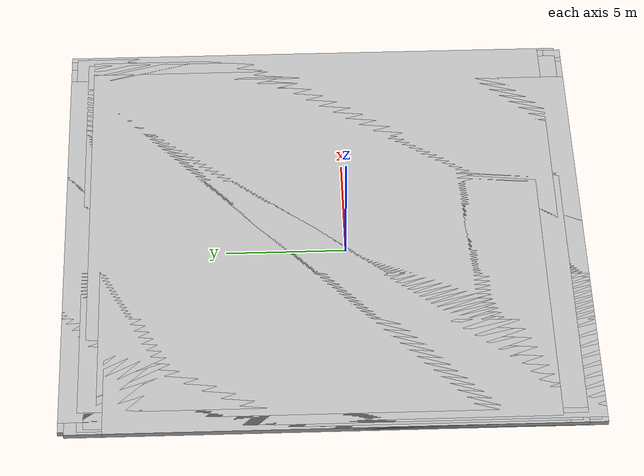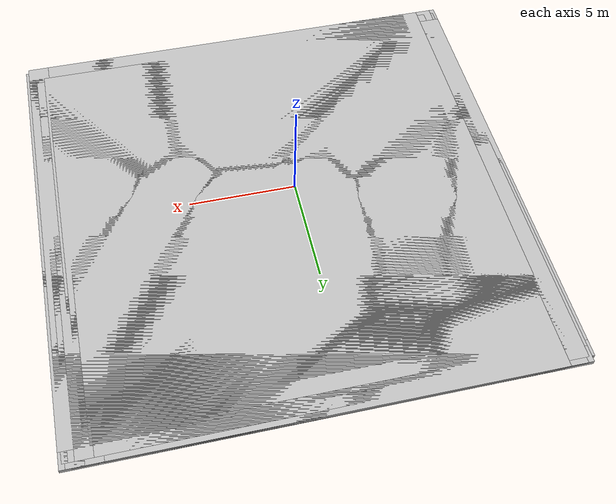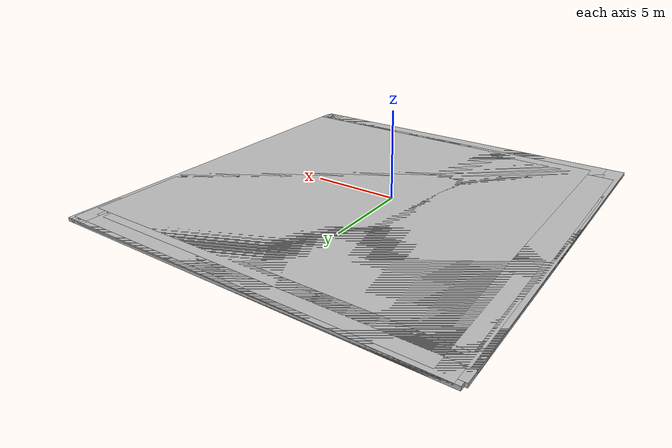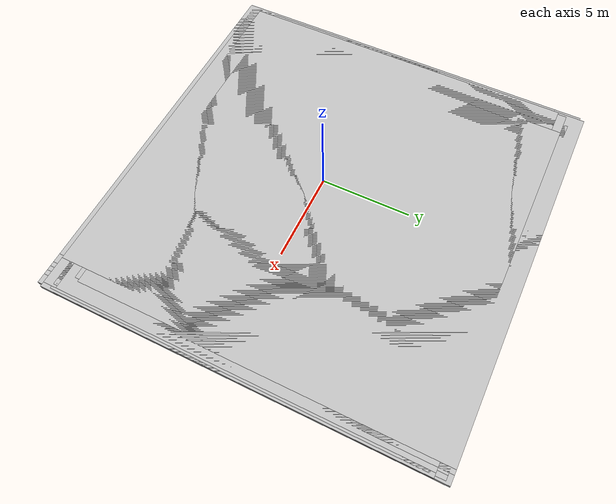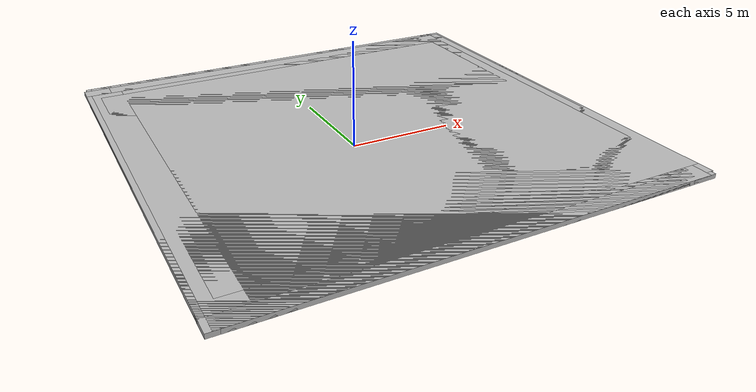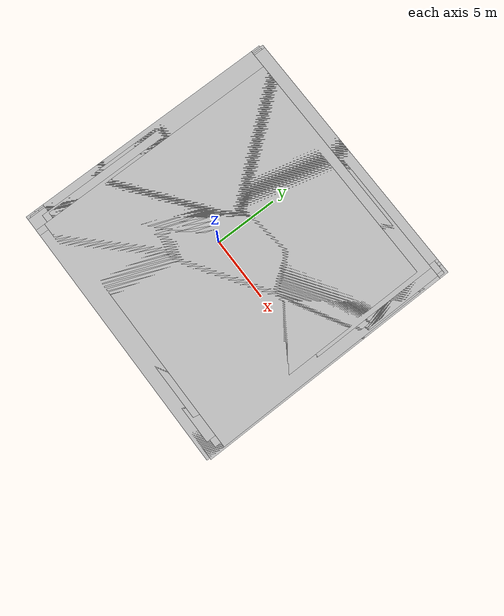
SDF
<sdf version="1.9">
 <world name="virtual_maize_field">
  <physics name="10ms" type="ignored">
   <max_step_size>0.01</max_step_size>
   <real_time_factor>1.0</real_time_factor>
  </physics>
  <plugin filename="gz-sim-physics-system" name="gz::sim::systems::Physics"/>
  <plugin filename="gz-sim-user-commands-system" name="gz::sim::systems::UserCommands"/>
  <plugin filename="gz-sim-scene-broadcaster-system" name="gz::sim::systems::SceneBroadcaster"/>
  <light type="directional" name="sun">
   <pose>0 0 10 0 0 0</pose>
   <diffuse>0.8 0.8 0.8 1</diffuse>
   <specular>0.2 0.2 0.2 1</specular>
   <attenuation>
    <range>1000</range>
    <constant>0.9</constant>
    <linear>0.01</linear>
    <quadratic>0.001</quadratic>
   </attenuation>
   <direction>-0.5 0.1 -0.9</direction>
  </light>
  <scene><sky><clouds><speed>12</speed></clouds></sky><grid>false</grid></scene>
  <include>
   <name>rice_g0rA_p0</name>
   <pose>0.00 0.00 0.3 0 0 0</pose>
   <uri>/home/ubuntu/github/Omni-Directional-Mobile-Robot/src/robotpadi_description/models/maize_01/model.sdf</uri>
  </include>
  <include>
   <name>rice_g0rA_p1</name>
   <pose>0.25 0.00 0.3 0 0 0</pose>
   <uri>/home/ubuntu/github/Omni-Directional-Mobile-Robot/src/robotpadi_description/models/maize_02/model.sdf</uri>
  </include>
  <include>
   <name>rice_g0rA_p2</name>
   <pose>0.50 0.00 0.3 0 0 0</pose>
   <uri>/home/ubuntu/github/Omni-Directional-Mobile-Robot/src/robotpadi_description/models/maize_01/model.sdf</uri>
  </include>
  <include>
   <name>rice_g0rA_p3</name>
   <pose>0.75 0.00 0.3 0 0 0</pose>
   <uri>/home/ubuntu/github/Omni-Directional-Mobile-Robot/src/robotpadi_description/models/maize_02/model.sdf</uri>
  </include>
  <include>
   <name>rice_g0rA_p4</name>
   <pose>1.00 0.00 0.3 0 0 0</pose>
   <uri>/home/ubuntu/github/Omni-Directional-Mobile-Robot/src/robotpadi_description/models/maize_01/model.sdf</uri>
  </include>
  <include>
   <name>rice_g0rA_p5</name>
   <pose>1.25 0.00 0.3 0 0 0</pose>
   <uri>/home/ubuntu/github/Omni-Directional-Mobile-Robot/src/robotpadi_description/models/maize_02/model.sdf</uri>
  </include>
  <include>
   <name>rice_g0rA_p6</name>
   <pose>1.50 0.00 0.3 0 0 0</pose>
   <uri>/home/ubuntu/github/Omni-Directional-Mobile-Robot/src/robotpadi_description/models/maize_01/model.sdf</uri>
  </include>
  <include>
   <name>rice_g0rA_p7</name>
   <pose>1.75 0.00 0.3 0 0 0</pose>
   <uri>/home/ubuntu/github/Omni-Directional-Mobile-Robot/src/robotpadi_description/models/maize_02/model.sdf</uri>
  </include>
  <include>
   <name>rice_g0rB_p0</name>
   <pose>0.125 0.25 0.3 0 0 0</pose>
   <uri>/home/ubuntu/github/Omni-Directional-Mobile-Robot/src/robotpadi_description/models/maize_01/model.sdf</uri>
  </include>
  <include>
   <name>rice_g0rB_p1</name>
   <pose>0.375 0.25 0.3 0 0 0</pose>
   <uri>/home/ubuntu/github/Omni-Directional-Mobile-Robot/src/robotpadi_description/models/maize_02/model.sdf</uri>
  </include>
  <include>
   <name>rice_g0rB_p2</name>
   <pose>0.625 0.25 0.3 0 0 0</pose>
   <uri>/home/ubuntu/github/Omni-Directional-Mobile-Robot/src/robotpadi_description/models/maize_01/model.sdf</uri>
  </include>
  <include>
   <name>rice_g0rB_p3</name>
   <pose>0.875 0.25 0.3 0 0 0</pose>
   <uri>/home/ubuntu/github/Omni-Directional-Mobile-Robot/src/robotpadi_description/models/maize_02/model.sdf</uri>
  </include>
  <include>
   <name>rice_g0rB_p4</name>
   <pose>1.125 0.25 0.3 0 0 0</pose>
   <uri>/home/ubuntu/github/Omni-Directional-Mobile-Robot/src/robotpadi_description/models/maize_01/model.sdf</uri>
  </include>
  <include>
   <name>rice_g0rB_p5</name>
   <pose>1.375 0.25 0.3 0 0 0</pose>
   <uri>/home/ubuntu/github/Omni-Directional-Mobile-Robot/src/robotpadi_description/models/maize_02/model.sdf</uri>
  </include>
  <include>
   <name>rice_g0rB_p6</name>
   <pose>1.625 0.25 0.3 0 0 0</pose>
   <uri>/home/ubuntu/github/Omni-Directional-Mobile-Robot/src/robotpadi_description/models/maize_01/model.sdf</uri>
  </include>
  <include>
   <name>rice_g0rB_p7</name>
   <pose>1.875 0.25 0.3 0 0 0</pose>
   <uri>/home/ubuntu/github/Omni-Directional-Mobile-Robot/src/robotpadi_description/models/maize_02/model.sdf</uri>
  </include>
  <include>
   <name>rice_g1rA_p0</name>
   <pose>0.00 0.75 0.3 0 0 0</pose>
   <uri>/home/ubuntu/github/Omni-Directional-Mobile-Robot/src/robotpadi_description/models/maize_01/model.sdf</uri>
  </include>
  <include>
   <name>rice_g1rA_p1</name>
   <pose>0.25 0.75 0.3 0 0 0</pose>
   <uri>/home/ubuntu/github/Omni-Directional-Mobile-Robot/src/robotpadi_description/models/maize_02/model.sdf</uri>
  </include>
  <include>
   <name>rice_g1rA_p2</name>
   <pose>0.50 0.75 0.3 0 0 0</pose>
   <uri>/home/ubuntu/github/Omni-Directional-Mobile-Robot/src/robotpadi_description/models/maize_01/model.sdf</uri>
  </include>
  <include>
   <name>rice_g1rA_p3</name>
   <pose>0.75 0.75 0.3 0 0 0</pose>
   <uri>/home/ubuntu/github/Omni-Directional-Mobile-Robot/src/robotpadi_description/models/maize_02/model.sdf</uri>
  </include>
  <include>
   <name>rice_g1rA_p4</name>
   <pose>1.00 0.75 0.3 0 0 0</pose>
   <uri>/home/ubuntu/github/Omni-Directional-Mobile-Robot/src/robotpadi_description/models/maize_01/model.sdf</uri>
  </include>
  <include>
   <name>rice_g1rA_p5</name>
   <pose>1.25 0.75 0.3 0 0 0</pose>
   <uri>/home/ubuntu/github/Omni-Directional-Mobile-Robot/src/robotpadi_description/models/maize_02/model.sdf</uri>
  </include>
  <include>
   <name>rice_g1rA_p6</name>
   <pose>1.50 0.75 0.3 0 0 0</pose>
   <uri>/home/ubuntu/github/Omni-Directional-Mobile-Robot/src/robotpadi_description/models/maize_01/model.sdf</uri>
  </include>
  <include>
   <name>rice_g1rA_p7</name>
   <pose>1.75 0.75 0.3 0 0 0</pose>
   <uri>/home/ubuntu/github/Omni-Directional-Mobile-Robot/src/robotpadi_description/models/maize_02/model.sdf</uri>
  </include>
  <include>
   <name>rice_g1rB_p0</name>
   <pose>0.125 1.00 0.3 0 0 0</pose>
   <uri>/home/ubuntu/github/Omni-Directional-Mobile-Robot/src/robotpadi_description/models/maize_01/model.sdf</uri>
  </include>
  <include>
   <name>rice_g1rB_p1</name>
   <pose>0.375 1.00 0.3 0 0 0</pose>
   <uri>/home/ubuntu/github/Omni-Directional-Mobile-Robot/src/robotpadi_description/models/maize_02/model.sdf</uri>
  </include>
  <include>
   <name>rice_g1rB_p2</name>
   <pose>0.625 1.00 0.3 0 0 0</pose>
   <uri>/home/ubuntu/github/Omni-Directional-Mobile-Robot/src/robotpadi_description/models/maize_01/model.sdf</uri>
  </include>
  <include>
   <name>rice_g1rB_p3</name>
   <pose>0.875 1.00 0.3 0 0 0</pose>
   <uri>/home/ubuntu/github/Omni-Directional-Mobile-Robot/src/robotpadi_description/models/maize_02/model.sdf</uri>
  </include>
  <include>
   <name>rice_g1rB_p4</name>
   <pose>1.125 1.00 0.3 0 0 0</pose>
   <uri>/home/ubuntu/github/Omni-Directional-Mobile-Robot/src/robotpadi_description/models/maize_01/model.sdf</uri>
  </include>
  <include>
   <name>rice_g1rB_p5</name>
   <pose>1.375 1.00 0.3 0 0 0</pose>
   <uri>/home/ubuntu/github/Omni-Directional-Mobile-Robot/src/robotpadi_description/models/maize_02/model.sdf</uri>
  </include>
  <include>
   <name>rice_g1rB_p6</name>
   <pose>1.625 1.00 0.3 0 0 0</pose>
   <uri>/home/ubuntu/github/Omni-Directional-Mobile-Robot/src/robotpadi_description/models/maize_01/model.sdf</uri>
  </include>
  <include>
   <name>rice_g1rB_p7</name>
   <pose>1.875 1.00 0.3 0 0 0</pose>
   <uri>/home/ubuntu/github/Omni-Directional-Mobile-Robot/src/robotpadi_description/models/maize_02/model.sdf</uri>
  </include>
  <include>
   <name>rice_g2rA_p0</name>
   <pose>0.00 1.50 0.3 0 0 0</pose>
   <uri>/home/ubuntu/github/Omni-Directional-Mobile-Robot/src/robotpadi_description/models/maize_01/model.sdf</uri>
  </include>
  <include>
   <name>rice_g2rA_p1</name>
   <pose>0.25 1.50 0.3 0 0 0</pose>
   <uri>/home/ubuntu/github/Omni-Directional-Mobile-Robot/src/robotpadi_description/models/maize_02/model.sdf</uri>
  </include>
  <include>
   <name>rice_g2rA_p2</name>
   <pose>0.50 1.50 0.3 0 0 0</pose>
   <uri>/home/ubuntu/github/Omni-Directional-Mobile-Robot/src/robotpadi_description/models/maize_01/model.sdf</uri>
  </include>
  <include>
   <name>rice_g2rA_p3</name>
   <pose>0.75 1.50 0.3 0 0 0</pose>
   <uri>/home/ubuntu/github/Omni-Directional-Mobile-Robot/src/robotpadi_description/models/maize_01/model.sdf</uri>
  </include>
  <include>
   <name>rice_g2rA_p4</name>
   <pose>1.00 1.50 0.3 0 0 0</pose>
   <uri>/home/ubuntu/github/Omni-Directional-Mobile-Robot/src/robotpadi_description/models/maize_02/model.sdf</uri>
  </include>
  <include>
   <name>rice_g2rA_p5</name>
   <pose>1.25 1.50 0.3 0 0 0</pose>
   <uri>/home/ubuntu/github/Omni-Directional-Mobile-Robot/src/robotpadi_description/models/maize_01/model.sdf</uri>
  </include>
  <include>
   <name>rice_g2rA_p6</name>
   <pose>1.50 1.50 0.3 0 0 0</pose>
   <uri>/home/ubuntu/github/Omni-Directional-Mobile-Robot/src/robotpadi_description/models/maize_02/model.sdf</uri>
  </include>
  <include>
   <name>rice_g2rA_p7</name>
   <pose>1.75 1.50 0.3 0 0 0</pose>
   <uri>/home/ubuntu/github/Omni-Directional-Mobile-Robot/src/robotpadi_description/models/maize_01/model.sdf</uri>
  </include>
  <include>
   <name>rice_g2rB_p0</name>
   <pose>0.125 1.75 0.3 0 0 0</pose>
   <uri>/home/ubuntu/github/Omni-Directional-Mobile-Robot/src/robotpadi_description/models/maize_01/model.sdf</uri>
  </include>
  <include>
   <name>rice_g2rB_p1</name>
   <pose>0.375 1.75 0.3 0 0 0</pose>
   <uri>/home/ubuntu/github/Omni-Directional-Mobile-Robot/src/robotpadi_description/models/maize_02/model.sdf</uri>
  </include>
  <include>
   <name>rice_g2rB_p2</name>
   <pose>0.625 1.75 0.3 0 0 0</pose>
   <uri>/home/ubuntu/github/Omni-Directional-Mobile-Robot/src/robotpadi_description/models/maize_01/model.sdf</uri>
  </include>
  <include>
   <name>rice_g2rB_p3</name>
   <pose>0.875 1.75 0.3 0 0 0</pose>
   <uri>/home/ubuntu/github/Omni-Directional-Mobile-Robot/src/robotpadi_description/models/maize_01/model.sdf</uri>
  </include>
  <include>
   <name>rice_g2rB_p4</name>
   <pose>1.125 1.75 0.3 0 0 0</pose>
   <uri>/home/ubuntu/github/Omni-Directional-Mobile-Robot/src/robotpadi_description/models/maize_02/model.sdf</uri>
  </include>
  <include>
   <name>rice_g2rB_p5</name>
   <pose>1.375 1.75 0.3 0 0 0</pose>
   <uri>/home/ubuntu/github/Omni-Directional-Mobile-Robot/src/robotpadi_description/models/maize_01/model.sdf</uri>
  </include>
  <include>
   <name>rice_g2rB_p6</name>
   <pose>1.625 1.75 0.3 0 0 0</pose>
   <uri>/home/ubuntu/github/Omni-Directional-Mobile-Robot/src/robotpadi_description/models/maize_02/model.sdf</uri>
  </include>
  <include>
   <name>rice_g2rB_p7</name>
   <pose>1.875 1.75 0.3 0 0 0</pose>
   <uri>/home/ubuntu/github/Omni-Directional-Mobile-Robot/src/robotpadi_description/models/maize_01/model.sdf</uri>
  </include>
 </world>
</sdf>

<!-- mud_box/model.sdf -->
<sdf version="1.5">
  <model name="mud_box">
    <static>true</static>
    <link name="link">
      <collision name="collision">
        <geometry>
          <box>
            <size>20 20 0.2</size>
          </box>
        </geometry>
      </collision>
      <visual name="visual">
        <pose>0 0 0 0 0 0</pose>
        <cast_shadows>false</cast_shadows>
        <geometry>
          <box>
            <size>20 20 0.2</size>
          </box>
        </geometry>
        <material>
          <script>
            <uri>model://Mud_Box/materials/scripts</uri>
            <uri>model://Mud_Box/materials/textures</uri>
            <name>vrc/mud</name>
          </script>
        </material>
      </visual>
    </link>
  </model>
</sdf>
